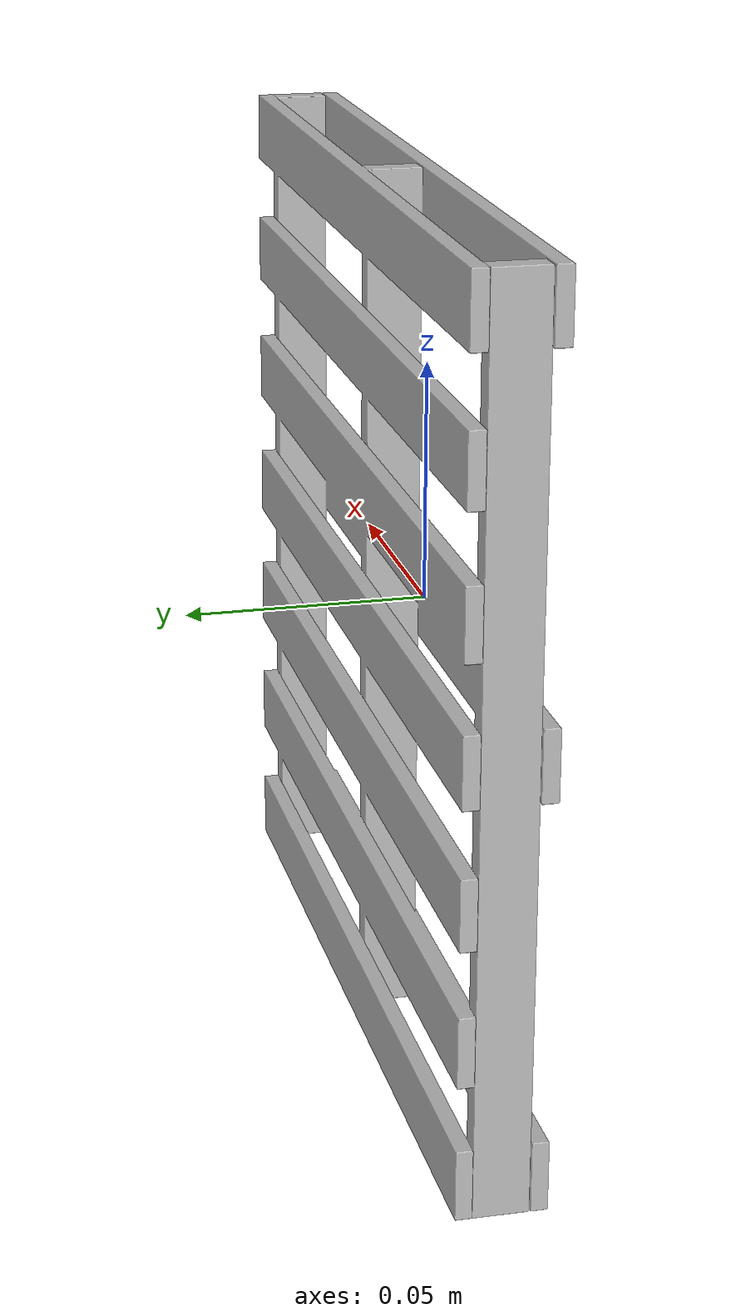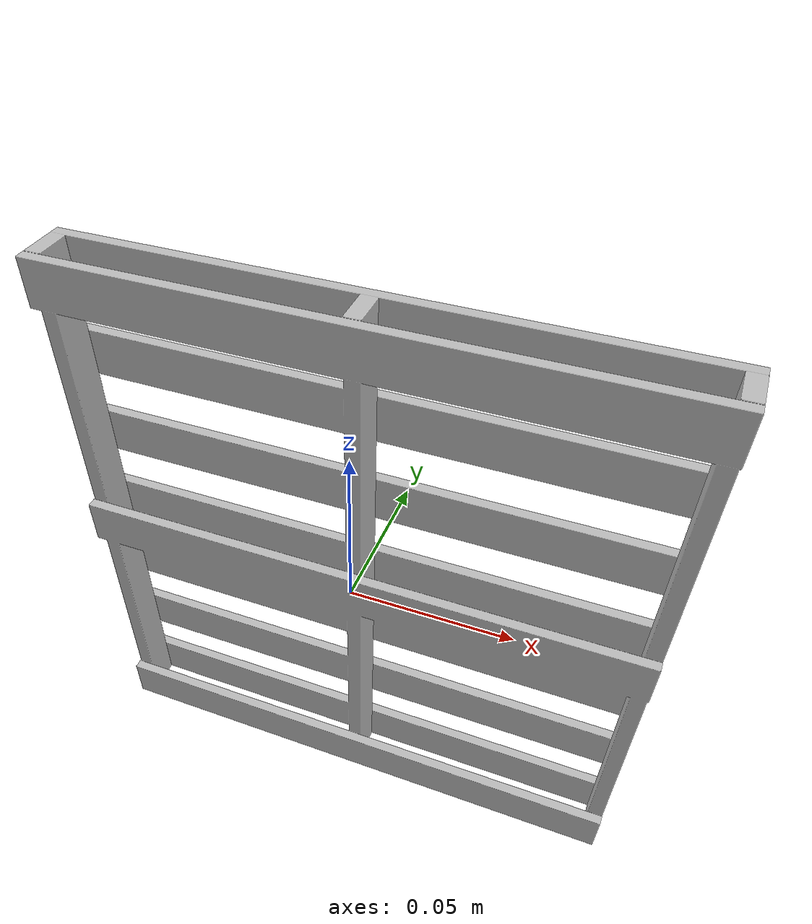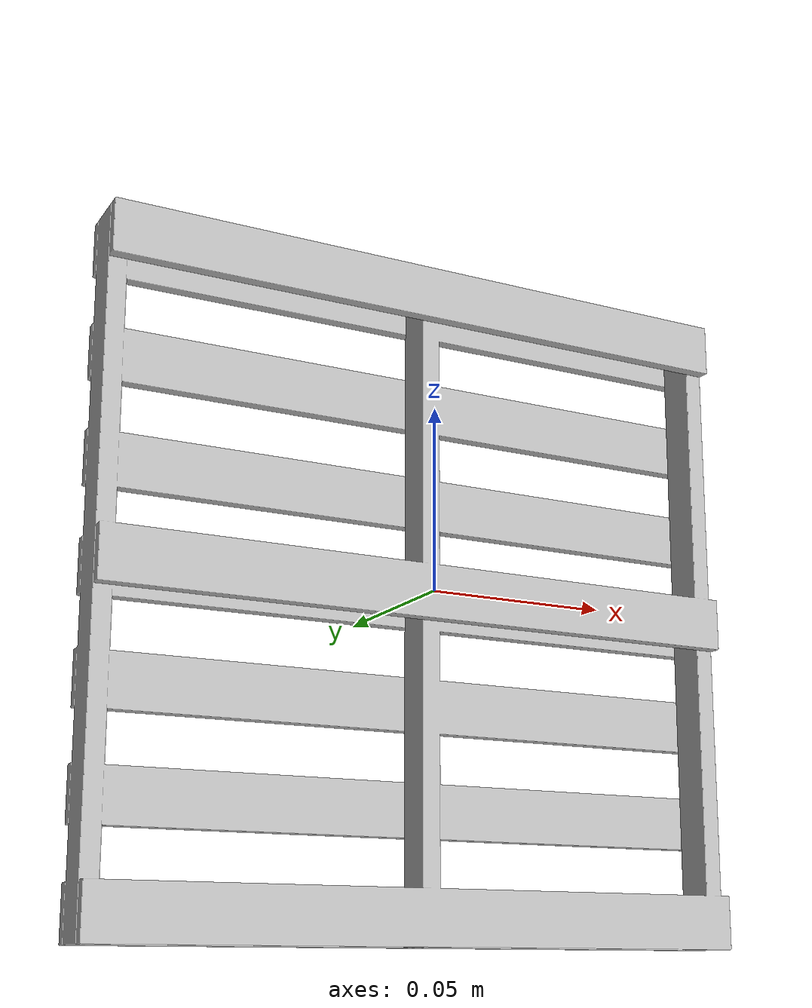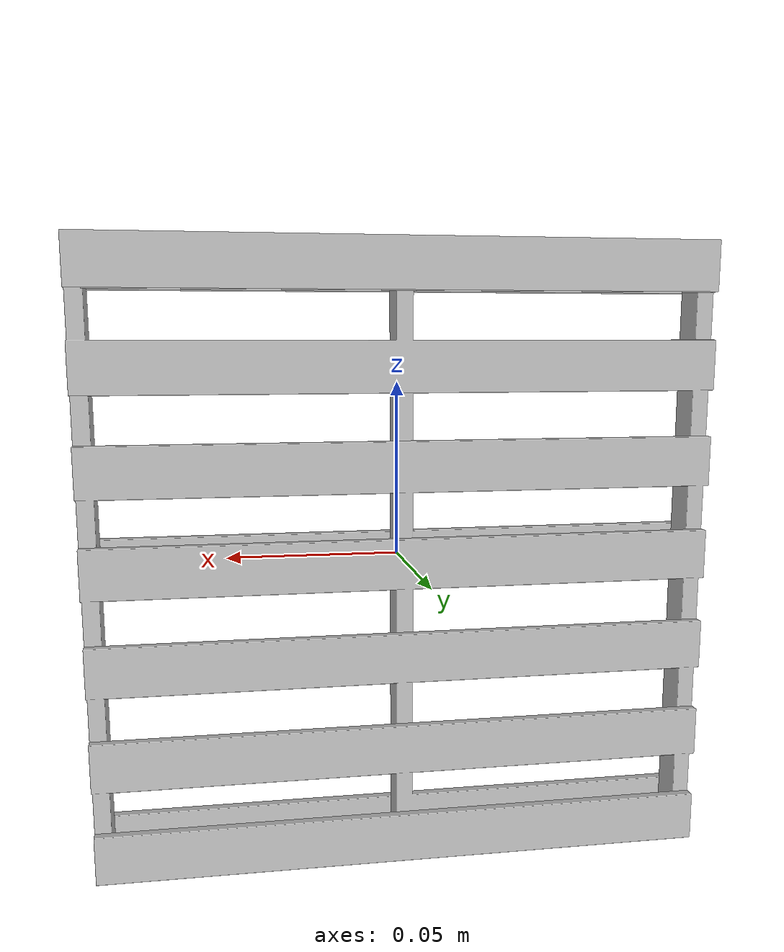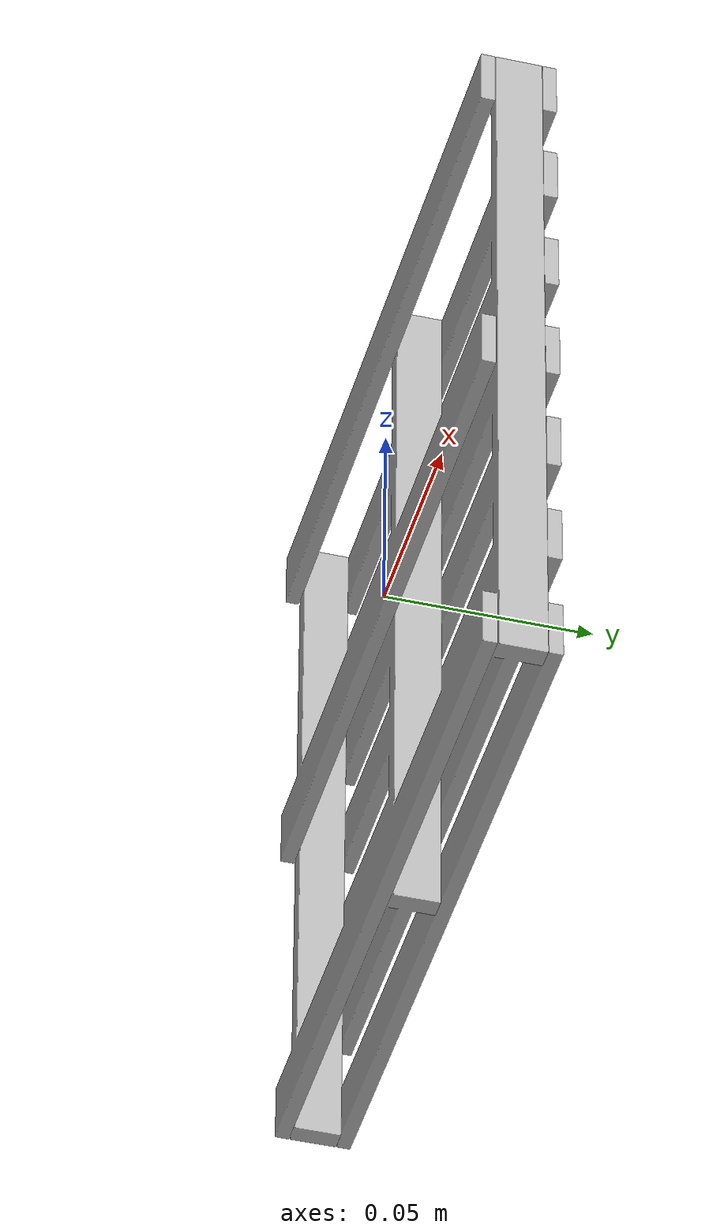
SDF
<?xml version='1.0'?>
<sdf version="1.6">
<model name="pallet">
  <pose>0 0 0 0 0 0</pose>
  <static>false</static>
    <link name="link">
      <inertial>
        <mass>0.003</mass>
        <inertia>
          <ixx>0.16667</ixx>
          <ixy>0.0</ixy>
          <ixz>0.0</ixz>
          <ixx>0.16667</ixx>
          <iyz>0.0</iyz>
          <ixx>0.16667</ixx>
        </inertia>
      </inertial>
      <collision name="collision">
        <geometry>
          <mesh>
            <uri>model://pallet/pallet.dae</uri>
            <scale>0.0015 0.0015 0.0015</scale>
          </mesh>
        </geometry>
      <max_contacts>10</max_contacts>
        <surface>
			<contact>
              <ode/>
            </contact>
            <bounce/>
           <friction>
              <ode>
              <mu>0.3</mu>
              <mu2>100</mu2>
              </ode>
           </friction>
      </surface>
      </collision>
      <visual name="visual">
        <geometry>
          <mesh>
            <uri>model://pallet/pallet.dae</uri>
            <scale>0.0015 0.0015 0.0015</scale>
          </mesh>
        </geometry>
      </visual>
      <self_collide>0</self_collide>
        <kinematic>0</kinematic>
        <gravity>1</gravity>
    </link>
  </model>
</sdf>
